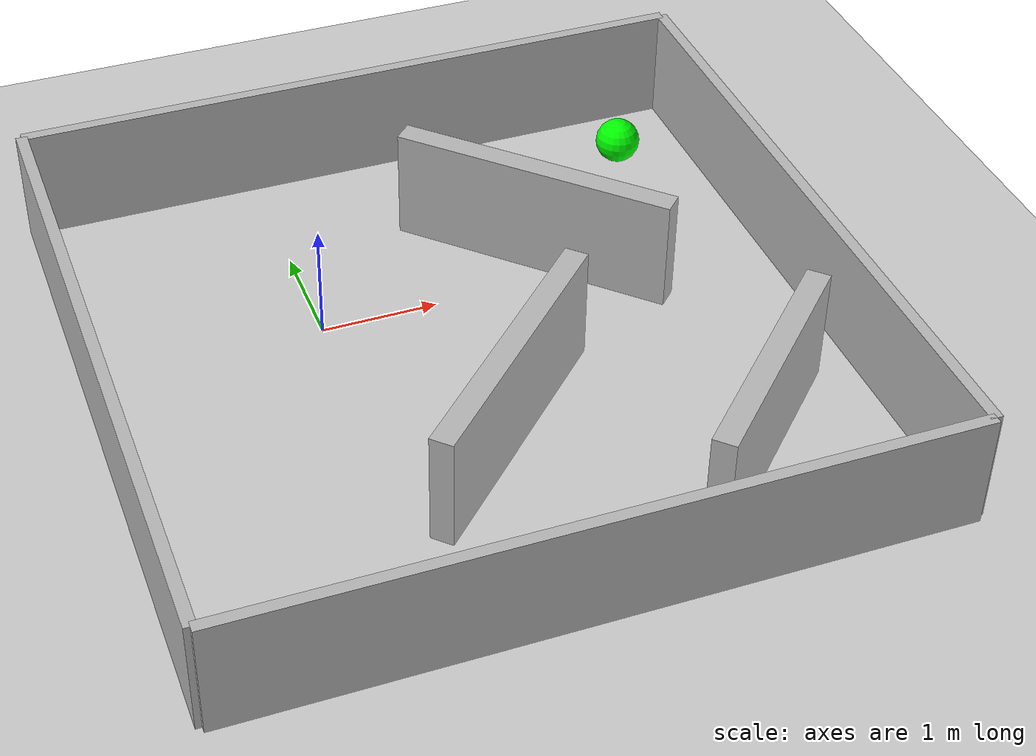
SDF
<?xml version="1.0"?>
<sdf version="1.6">
  <world name="martha_test_world_8">
    <physics name="default_physics" type="ode">
      <max_step_size>0.001</max_step_size>
      <real_time_update_rate>1000</real_time_update_rate>
      <real_time_factor>1.0</real_time_factor>
    </physics>
    <gravity>0 0 -9.81</gravity>
    <include><uri>model://sun</uri></include>
    <include><uri>model://ground_plane</uri></include>
    <plugin name="gazebo_ros_state" filename="libgazebo_ros_state.so">
      <ros><namespace>/gazebo</namespace></ros>
      <update_rate>50.0</update_rate>
    </plugin>

    <!-- Arena center: (1.0, -0.8). -->
    <model name="wall_left"><static>true</static><pose>1.0 2.2 0.5 0 0 0</pose><link name="link"><collision name="collision"><geometry><box><size>6 0.1 1</size></box></geometry></collision><visual name="visual"><geometry><box><size>6 0.1 1</size></box></geometry></visual></link></model>
    <model name="wall_right"><static>true</static><pose>1.0 -3.8 0.5 0 0 0</pose><link name="link"><collision name="collision"><geometry><box><size>6 0.1 1</size></box></geometry></collision><visual name="visual"><geometry><box><size>6 0.1 1</size></box></geometry></visual></link></model>
    <model name="wall_front"><static>true</static><pose>4.0 -0.8 0.5 0 0 0</pose><link name="link"><collision name="collision"><geometry><box><size>0.1 6 1</size></box></geometry></collision><visual name="visual"><geometry><box><size>0.1 6 1</size></box></geometry></visual></link></model>
    <model name="wall_back"><static>true</static><pose>-2.0 -0.8 0.5 0 0 0</pose><link name="link"><collision name="collision"><geometry><box><size>0.1 6 1</size></box></geometry></collision><visual name="visual"><geometry><box><size>0.1 6 1</size></box></geometry></visual></link></model>

    <model name="zz_wall_1"><static>true</static><pose>1.0 -1.8 0.5 0 0 0.785398</pose><link name="link"><collision name="collision"><geometry><box><size>2.5 0.2 1</size></box></geometry></collision><visual name="visual"><geometry><box><size>2.5 0.2 1</size></box></geometry></visual></link></model>
    <model name="zz_wall_2"><static>true</static><pose>2.0 0.3 0.5 0 0 -0.785398</pose><link name="link"><collision name="collision"><geometry><box><size>2.5 0.2 1</size></box></geometry></collision><visual name="visual"><geometry><box><size>2.5 0.2 1</size></box></geometry></visual></link></model>
    <model name="zz_wall_3"><static>true</static><pose>2.8 -2.6 0.5 0 0 0.785398</pose><link name="link"><collision name="collision"><geometry><box><size>2.2 0.2 1</size></box></geometry></collision><visual name="visual"><geometry><box><size>2.2 0.2 1</size></box></geometry></visual></link></model>

    <model name="goal_point">
      <static>true</static><pose>3.3 1.5 0.2 0 0 0</pose>
      <link name="link"><visual name="visual"><geometry><sphere><radius>0.2</radius></sphere></geometry><material><ambient>0 1 0 1</ambient><diffuse>0 1 0 1</diffuse></material></visual></link>
    </model>
  </world>
</sdf>
